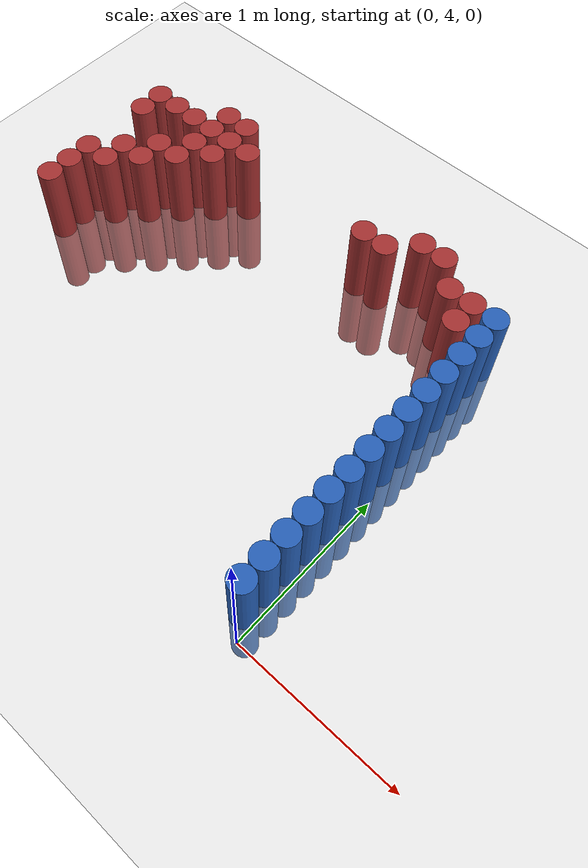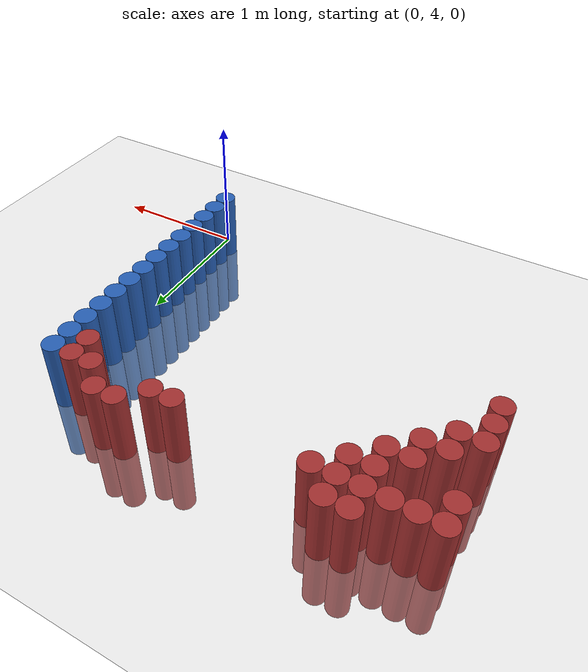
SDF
<sdf version="1.6">
 <world name="default">
  <model name="ground_plane">
   <static>1</static>
   <link name="link">
    <collision name="collision">
     <geometry><plane><normal>0 0 1</normal><size>100 100</size></plane></geometry>
     <surface><friction><ode><mu>100</mu><mu2>50</mu2></ode></friction></surface>
    </collision>
    <visual name="visual">
     <cast_shadows>0</cast_shadows>
     <geometry><plane><normal>0 0 1</normal><size>100 100</size></plane></geometry>
     <material>
      <script><uri>file://media/materials/scripts/gazebo.material</uri><name>Gazebo/Grey</name></script>
     </material>
    </visual>
   </link>
  </model>
  <model name="unit_cylinder_82">
   <static>1</static>
   <pose>-0.075000 4.125000 0.000000 0.000000 0.000000 0.000000</pose>
   <link name="link">
    <inertial>
     <mass>1</mass>
     <inertia><ixx>0.145833</ixx><ixy>0</ixy><ixz>0</ixz><iyy>0.145833</iyy><iyz>0</iyz><izz>0.125</izz></inertia>
    </inertial>
    <collision name="collision">
     <geometry><cylinder><radius>0.075000</radius><length>1</length></cylinder></geometry>
    </collision>
    <visual name="visual">
     <geometry><cylinder><radius>0.075000</radius><length>1</length></cylinder></geometry>
     <material>
      <ambient>0.152000 0.379000 0.720000 1</ambient>
      <diffuse>0.152000 0.379000 0.720000 1</diffuse>
     </material>
     <material>
      <script><name>Gazebo/Grey</name><uri>file://media/materials/scripts/gazebo.material</uri></script>
     </material>
    </visual>
    <sensor name="sensor_contact" type="contact"><contact><collision>collision</collision></contact></sensor>
   </link>
   <plugin filename="gz-sim-touchplugin-system" name="gz::sim::systems::TouchPlugin">
    <target>robot</target>
    <namespace>robot</namespace>
    <time>0.001</time>
    <enabled>true</enabled>
   </plugin>
  </model>
  <model name="unit_cylinder_84">
   <static>1</static>
   <pose>-0.075000 4.275000 0.000000 0.000000 0.000000 0.000000</pose>
   <link name="link">
    <inertial>
     <mass>1</mass>
     <inertia><ixx>0.145833</ixx><ixy>0</ixy><ixz>0</ixz><iyy>0.145833</iyy><iyz>0</iyz><izz>0.125</izz></inertia>
    </inertial>
    <collision name="collision">
     <geometry><cylinder><radius>0.075000</radius><length>1</length></cylinder></geometry>
    </collision>
    <visual name="visual">
     <geometry><cylinder><radius>0.075000</radius><length>1</length></cylinder></geometry>
     <material>
      <ambient>0.152000 0.379000 0.720000 1</ambient>
      <diffuse>0.152000 0.379000 0.720000 1</diffuse>
     </material>
     <material>
      <script><name>Gazebo/Grey</name><uri>file://media/materials/scripts/gazebo.material</uri></script>
     </material>
    </visual>
    <sensor name="sensor_contact" type="contact"><contact><collision>collision</collision></contact></sensor>
   </link>
   <plugin filename="gz-sim-touchplugin-system" name="gz::sim::systems::TouchPlugin">
    <target>robot</target>
    <namespace>robot</namespace>
    <time>0.001</time>
    <enabled>true</enabled>
   </plugin>
  </model>
  <model name="unit_cylinder_86">
   <static>1</static>
   <pose>-0.075000 4.425000 0.000000 0.000000 0.000000 0.000000</pose>
   <link name="link">
    <inertial>
     <mass>1</mass>
     <inertia><ixx>0.145833</ixx><ixy>0</ixy><ixz>0</ixz><iyy>0.145833</iyy><iyz>0</iyz><izz>0.125</izz></inertia>
    </inertial>
    <collision name="collision">
     <geometry><cylinder><radius>0.075000</radius><length>1</length></cylinder></geometry>
    </collision>
    <visual name="visual">
     <geometry><cylinder><radius>0.075000</radius><length>1</length></cylinder></geometry>
     <material>
      <ambient>0.152000 0.379000 0.720000 1</ambient>
      <diffuse>0.152000 0.379000 0.720000 1</diffuse>
     </material>
     <material>
      <script><name>Gazebo/Grey</name><uri>file://media/materials/scripts/gazebo.material</uri></script>
     </material>
    </visual>
    <sensor name="sensor_contact" type="contact"><contact><collision>collision</collision></contact></sensor>
   </link>
   <plugin filename="gz-sim-touchplugin-system" name="gz::sim::systems::TouchPlugin">
    <target>robot</target>
    <namespace>robot</namespace>
    <time>0.001</time>
    <enabled>true</enabled>
   </plugin>
  </model>
  <model name="unit_cylinder_88">
   <static>1</static>
   <pose>-0.075000 4.575000 0.000000 0.000000 0.000000 0.000000</pose>
   <link name="link">
    <inertial>
     <mass>1</mass>
     <inertia><ixx>0.145833</ixx><ixy>0</ixy><ixz>0</ixz><iyy>0.145833</iyy><iyz>0</iyz><izz>0.125</izz></inertia>
    </inertial>
    <collision name="collision">
     <geometry><cylinder><radius>0.075000</radius><length>1</length></cylinder></geometry>
    </collision>
    <visual name="visual">
     <geometry><cylinder><radius>0.075000</radius><length>1</length></cylinder></geometry>
     <material>
      <ambient>0.152000 0.379000 0.720000 1</ambient>
      <diffuse>0.152000 0.379000 0.720000 1</diffuse>
     </material>
     <material>
      <script><name>Gazebo/Grey</name><uri>file://media/materials/scripts/gazebo.material</uri></script>
     </material>
    </visual>
    <sensor name="sensor_contact" type="contact"><contact><collision>collision</collision></contact></sensor>
   </link>
   <plugin filename="gz-sim-touchplugin-system" name="gz::sim::systems::TouchPlugin">
    <target>robot</target>
    <namespace>robot</namespace>
    <time>0.001</time>
    <enabled>true</enabled>
   </plugin>
  </model>
  <model name="unit_cylinder_90">
   <static>1</static>
   <pose>-0.075000 4.725000 0.000000 0.000000 0.000000 0.000000</pose>
   <link name="link">
    <inertial>
     <mass>1</mass>
     <inertia><ixx>0.145833</ixx><ixy>0</ixy><ixz>0</ixz><iyy>0.145833</iyy><iyz>0</iyz><izz>0.125</izz></inertia>
    </inertial>
    <collision name="collision">
     <geometry><cylinder><radius>0.075000</radius><length>1</length></cylinder></geometry>
    </collision>
    <visual name="visual">
     <geometry><cylinder><radius>0.075000</radius><length>1</length></cylinder></geometry>
     <material>
      <ambient>0.152000 0.379000 0.720000 1</ambient>
      <diffuse>0.152000 0.379000 0.720000 1</diffuse>
     </material>
     <material>
      <script><name>Gazebo/Grey</name><uri>file://media/materials/scripts/gazebo.material</uri></script>
     </material>
    </visual>
    <sensor name="sensor_contact" type="contact"><contact><collision>collision</collision></contact></sensor>
   </link>
   <plugin filename="gz-sim-touchplugin-system" name="gz::sim::systems::TouchPlugin">
    <target>robot</target>
    <namespace>robot</namespace>
    <time>0.001</time>
    <enabled>true</enabled>
   </plugin>
  </model>
  <model name="unit_cylinder_92">
   <static>1</static>
   <pose>-0.075000 4.875000 0.000000 0.000000 0.000000 0.000000</pose>
   <link name="link">
    <inertial>
     <mass>1</mass>
     <inertia><ixx>0.145833</ixx><ixy>0</ixy><ixz>0</ixz><iyy>0.145833</iyy><iyz>0</iyz><izz>0.125</izz></inertia>
    </inertial>
    <collision name="collision">
     <geometry><cylinder><radius>0.075000</radius><length>1</length></cylinder></geometry>
    </collision>
    <visual name="visual">
     <geometry><cylinder><radius>0.075000</radius><length>1</length></cylinder></geometry>
     <material>
      <ambient>0.152000 0.379000 0.720000 1</ambient>
      <diffuse>0.152000 0.379000 0.720000 1</diffuse>
     </material>
     <material>
      <script><name>Gazebo/Grey</name><uri>file://media/materials/scripts/gazebo.material</uri></script>
     </material>
    </visual>
    <sensor name="sensor_contact" type="contact"><contact><collision>collision</collision></contact></sensor>
   </link>
   <plugin filename="gz-sim-touchplugin-system" name="gz::sim::systems::TouchPlugin">
    <target>robot</target>
    <namespace>robot</namespace>
    <time>0.001</time>
    <enabled>true</enabled>
   </plugin>
  </model>
  <model name="unit_cylinder_94">
   <static>1</static>
   <pose>-0.075000 5.025000 0.000000 0.000000 0.000000 0.000000</pose>
   <link name="link">
    <inertial>
     <mass>1</mass>
     <inertia><ixx>0.145833</ixx><ixy>0</ixy><ixz>0</ixz><iyy>0.145833</iyy><iyz>0</iyz><izz>0.125</izz></inertia>
    </inertial>
    <collision name="collision">
     <geometry><cylinder><radius>0.075000</radius><length>1</length></cylinder></geometry>
    </collision>
    <visual name="visual">
     <geometry><cylinder><radius>0.075000</radius><length>1</length></cylinder></geometry>
     <material>
      <ambient>0.152000 0.379000 0.720000 1</ambient>
      <diffuse>0.152000 0.379000 0.720000 1</diffuse>
     </material>
     <material>
      <script><name>Gazebo/Grey</name><uri>file://media/materials/scripts/gazebo.material</uri></script>
     </material>
    </visual>
    <sensor name="sensor_contact" type="contact"><contact><collision>collision</collision></contact></sensor>
   </link>
   <plugin filename="gz-sim-touchplugin-system" name="gz::sim::systems::TouchPlugin">
    <target>robot</target>
    <namespace>robot</namespace>
    <time>0.001</time>
    <enabled>true</enabled>
   </plugin>
  </model>
  <model name="unit_cylinder_230">
   <static>1</static>
   <pose>-2.625000 5.175000 0.000000 0.000000 0.000000 0.000000</pose>
   <link name="link">
    <inertial>
     <mass>1</mass>
     <inertia><ixx>0.145833</ixx><ixy>0</ixy><ixz>0</ixz><iyy>0.145833</iyy><iyz>0</iyz><izz>0.125</izz></inertia>
    </inertial>
    <collision name="collision">
     <geometry><cylinder><radius>0.075000</radius><length>1</length></cylinder></geometry>
    </collision>
    <visual name="visual">
     <geometry><cylinder><radius>0.075000</radius><length>1</length></cylinder></geometry>
     <material>
      <ambient>0.648000 0.192000 0.192000 1</ambient>
      <diffuse>0.648000 0.192000 0.192000 1</diffuse>
     </material>
     <material>
      <script><name>Gazebo/Grey</name><uri>file://media/materials/scripts/gazebo.material</uri></script>
     </material>
    </visual>
    <sensor name="sensor_contact" type="contact"><contact><collision>collision</collision></contact></sensor>
   </link>
   <plugin filename="gz-sim-touchplugin-system" name="gz::sim::systems::TouchPlugin">
    <target>robot</target>
    <namespace>robot</namespace>
    <time>0.001</time>
    <enabled>true</enabled>
   </plugin>
  </model>
  <model name="unit_cylinder_231">
   <static>1</static>
   <pose>-2.625000 5.325000 0.000000 0.000000 0.000000 0.000000</pose>
   <link name="link">
    <inertial>
     <mass>1</mass>
     <inertia><ixx>0.145833</ixx><ixy>0</ixy><ixz>0</ixz><iyy>0.145833</iyy><iyz>0</iyz><izz>0.125</izz></inertia>
    </inertial>
    <collision name="collision">
     <geometry><cylinder><radius>0.075000</radius><length>1</length></cylinder></geometry>
    </collision>
    <visual name="visual">
     <geometry><cylinder><radius>0.075000</radius><length>1</length></cylinder></geometry>
     <material>
      <ambient>0.648000 0.192000 0.192000 1</ambient>
      <diffuse>0.648000 0.192000 0.192000 1</diffuse>
     </material>
     <material>
      <script><name>Gazebo/Grey</name><uri>file://media/materials/scripts/gazebo.material</uri></script>
     </material>
    </visual>
    <sensor name="sensor_contact" type="contact"><contact><collision>collision</collision></contact></sensor>
   </link>
   <plugin filename="gz-sim-touchplugin-system" name="gz::sim::systems::TouchPlugin">
    <target>robot</target>
    <namespace>robot</namespace>
    <time>0.001</time>
    <enabled>true</enabled>
   </plugin>
  </model>
  <model name="unit_cylinder_232">
   <static>1</static>
   <pose>-2.625000 5.475000 0.000000 0.000000 0.000000 0.000000</pose>
   <link name="link">
    <inertial>
     <mass>1</mass>
     <inertia><ixx>0.145833</ixx><ixy>0</ixy><ixz>0</ixz><iyy>0.145833</iyy><iyz>0</iyz><izz>0.125</izz></inertia>
    </inertial>
    <collision name="collision">
     <geometry><cylinder><radius>0.075000</radius><length>1</length></cylinder></geometry>
    </collision>
    <visual name="visual">
     <geometry><cylinder><radius>0.075000</radius><length>1</length></cylinder></geometry>
     <material>
      <ambient>0.648000 0.192000 0.192000 1</ambient>
      <diffuse>0.648000 0.192000 0.192000 1</diffuse>
     </material>
     <material>
      <script><name>Gazebo/Grey</name><uri>file://media/materials/scripts/gazebo.material</uri></script>
     </material>
    </visual>
    <sensor name="sensor_contact" type="contact"><contact><collision>collision</collision></contact></sensor>
   </link>
   <plugin filename="gz-sim-touchplugin-system" name="gz::sim::systems::TouchPlugin">
    <target>robot</target>
    <namespace>robot</namespace>
    <time>0.001</time>
    <enabled>true</enabled>
   </plugin>
  </model>
  <model name="unit_cylinder_233">
   <static>1</static>
   <pose>-2.625000 5.925000 0.000000 0.000000 0.000000 0.000000</pose>
   <link name="link">
    <inertial>
     <mass>1</mass>
     <inertia><ixx>0.145833</ixx><ixy>0</ixy><ixz>0</ixz><iyy>0.145833</iyy><iyz>0</iyz><izz>0.125</izz></inertia>
    </inertial>
    <collision name="collision">
     <geometry><cylinder><radius>0.075000</radius><length>1</length></cylinder></geometry>
    </collision>
    <visual name="visual">
     <geometry><cylinder><radius>0.075000</radius><length>1</length></cylinder></geometry>
     <material>
      <ambient>0.648000 0.192000 0.192000 1</ambient>
      <diffuse>0.648000 0.192000 0.192000 1</diffuse>
     </material>
     <material>
      <script><name>Gazebo/Grey</name><uri>file://media/materials/scripts/gazebo.material</uri></script>
     </material>
    </visual>
    <sensor name="sensor_contact" type="contact"><contact><collision>collision</collision></contact></sensor>
   </link>
   <plugin filename="gz-sim-touchplugin-system" name="gz::sim::systems::TouchPlugin">
    <target>robot</target>
    <namespace>robot</namespace>
    <time>0.001</time>
    <enabled>true</enabled>
   </plugin>
  </model>
  <model name="unit_cylinder_234">
   <static>1</static>
   <pose>-2.625000 6.075000 0.000000 0.000000 0.000000 0.000000</pose>
   <link name="link">
    <inertial>
     <mass>1</mass>
     <inertia><ixx>0.145833</ixx><ixy>0</ixy><ixz>0</ixz><iyy>0.145833</iyy><iyz>0</iyz><izz>0.125</izz></inertia>
    </inertial>
    <collision name="collision">
     <geometry><cylinder><radius>0.075000</radius><length>1</length></cylinder></geometry>
    </collision>
    <visual name="visual">
     <geometry><cylinder><radius>0.075000</radius><length>1</length></cylinder></geometry>
     <material>
      <ambient>0.648000 0.192000 0.192000 1</ambient>
      <diffuse>0.648000 0.192000 0.192000 1</diffuse>
     </material>
     <material>
      <script><name>Gazebo/Grey</name><uri>file://media/materials/scripts/gazebo.material</uri></script>
     </material>
    </visual>
    <sensor name="sensor_contact" type="contact"><contact><collision>collision</collision></contact></sensor>
   </link>
   <plugin filename="gz-sim-touchplugin-system" name="gz::sim::systems::TouchPlugin">
    <target>robot</target>
    <namespace>robot</namespace>
    <time>0.001</time>
    <enabled>true</enabled>
   </plugin>
  </model>
  <model name="unit_cylinder_242">
   <static>1</static>
   <pose>-2.475000 5.475000 0.000000 0.000000 0.000000 0.000000</pose>
   <link name="link">
    <inertial>
     <mass>1</mass>
     <inertia><ixx>0.145833</ixx><ixy>0</ixy><ixz>0</ixz><iyy>0.145833</iyy><iyz>0</iyz><izz>0.125</izz></inertia>
    </inertial>
    <collision name="collision">
     <geometry><cylinder><radius>0.075000</radius><length>1</length></cylinder></geometry>
    </collision>
    <visual name="visual">
     <geometry><cylinder><radius>0.075000</radius><length>1</length></cylinder></geometry>
     <material>
      <ambient>0.648000 0.192000 0.192000 1</ambient>
      <diffuse>0.648000 0.192000 0.192000 1</diffuse>
     </material>
     <material>
      <script><name>Gazebo/Grey</name><uri>file://media/materials/scripts/gazebo.material</uri></script>
     </material>
    </visual>
    <sensor name="sensor_contact" type="contact"><contact><collision>collision</collision></contact></sensor>
   </link>
   <plugin filename="gz-sim-touchplugin-system" name="gz::sim::systems::TouchPlugin">
    <target>robot</target>
    <namespace>robot</namespace>
    <time>0.001</time>
    <enabled>true</enabled>
   </plugin>
  </model>
  <model name="unit_cylinder_243">
   <static>1</static>
   <pose>-2.475000 5.625000 0.000000 0.000000 0.000000 0.000000</pose>
   <link name="link">
    <inertial>
     <mass>1</mass>
     <inertia><ixx>0.145833</ixx><ixy>0</ixy><ixz>0</ixz><iyy>0.145833</iyy><iyz>0</iyz><izz>0.125</izz></inertia>
    </inertial>
    <collision name="collision">
     <geometry><cylinder><radius>0.075000</radius><length>1</length></cylinder></geometry>
    </collision>
    <visual name="visual">
     <geometry><cylinder><radius>0.075000</radius><length>1</length></cylinder></geometry>
     <material>
      <ambient>0.648000 0.192000 0.192000 1</ambient>
      <diffuse>0.648000 0.192000 0.192000 1</diffuse>
     </material>
     <material>
      <script><name>Gazebo/Grey</name><uri>file://media/materials/scripts/gazebo.material</uri></script>
     </material>
    </visual>
    <sensor name="sensor_contact" type="contact"><contact><collision>collision</collision></contact></sensor>
   </link>
   <plugin filename="gz-sim-touchplugin-system" name="gz::sim::systems::TouchPlugin">
    <target>robot</target>
    <namespace>robot</namespace>
    <time>0.001</time>
    <enabled>true</enabled>
   </plugin>
  </model>
  <model name="unit_cylinder_244">
   <static>1</static>
   <pose>-2.475000 6.075000 0.000000 0.000000 0.000000 0.000000</pose>
   <link name="link">
    <inertial>
     <mass>1</mass>
     <inertia><ixx>0.145833</ixx><ixy>0</ixy><ixz>0</ixz><iyy>0.145833</iyy><iyz>0</iyz><izz>0.125</izz></inertia>
    </inertial>
    <collision name="collision">
     <geometry><cylinder><radius>0.075000</radius><length>1</length></cylinder></geometry>
    </collision>
    <visual name="visual">
     <geometry><cylinder><radius>0.075000</radius><length>1</length></cylinder></geometry>
     <material>
      <ambient>0.648000 0.192000 0.192000 1</ambient>
      <diffuse>0.648000 0.192000 0.192000 1</diffuse>
     </material>
     <material>
      <script><name>Gazebo/Grey</name><uri>file://media/materials/scripts/gazebo.material</uri></script>
     </material>
    </visual>
    <sensor name="sensor_contact" type="contact"><contact><collision>collision</collision></contact></sensor>
   </link>
   <plugin filename="gz-sim-touchplugin-system" name="gz::sim::systems::TouchPlugin">
    <target>robot</target>
    <namespace>robot</namespace>
    <time>0.001</time>
    <enabled>true</enabled>
   </plugin>
  </model>
  <model name="unit_cylinder_250">
   <static>1</static>
   <pose>-2.325000 5.625000 0.000000 0.000000 0.000000 0.000000</pose>
   <link name="link">
    <inertial>
     <mass>1</mass>
     <inertia><ixx>0.145833</ixx><ixy>0</ixy><ixz>0</ixz><iyy>0.145833</iyy><iyz>0</iyz><izz>0.125</izz></inertia>
    </inertial>
    <collision name="collision">
     <geometry><cylinder><radius>0.075000</radius><length>1</length></cylinder></geometry>
    </collision>
    <visual name="visual">
     <geometry><cylinder><radius>0.075000</radius><length>1</length></cylinder></geometry>
     <material>
      <ambient>0.648000 0.192000 0.192000 1</ambient>
      <diffuse>0.648000 0.192000 0.192000 1</diffuse>
     </material>
     <material>
      <script><name>Gazebo/Grey</name><uri>file://media/materials/scripts/gazebo.material</uri></script>
     </material>
    </visual>
    <sensor name="sensor_contact" type="contact"><contact><collision>collision</collision></contact></sensor>
   </link>
   <plugin filename="gz-sim-touchplugin-system" name="gz::sim::systems::TouchPlugin">
    <target>robot</target>
    <namespace>robot</namespace>
    <time>0.001</time>
    <enabled>true</enabled>
   </plugin>
  </model>
  <model name="unit_cylinder_251">
   <static>1</static>
   <pose>-2.325000 5.775000 0.000000 0.000000 0.000000 0.000000</pose>
   <link name="link">
    <inertial>
     <mass>1</mass>
     <inertia><ixx>0.145833</ixx><ixy>0</ixy><ixz>0</ixz><iyy>0.145833</iyy><iyz>0</iyz><izz>0.125</izz></inertia>
    </inertial>
    <collision name="collision">
     <geometry><cylinder><radius>0.075000</radius><length>1</length></cylinder></geometry>
    </collision>
    <visual name="visual">
     <geometry><cylinder><radius>0.075000</radius><length>1</length></cylinder></geometry>
     <material>
      <ambient>0.648000 0.192000 0.192000 1</ambient>
      <diffuse>0.648000 0.192000 0.192000 1</diffuse>
     </material>
     <material>
      <script><name>Gazebo/Grey</name><uri>file://media/materials/scripts/gazebo.material</uri></script>
     </material>
    </visual>
    <sensor name="sensor_contact" type="contact"><contact><collision>collision</collision></contact></sensor>
   </link>
   <plugin filename="gz-sim-touchplugin-system" name="gz::sim::systems::TouchPlugin">
    <target>robot</target>
    <namespace>robot</namespace>
    <time>0.001</time>
    <enabled>true</enabled>
   </plugin>
  </model>
  <model name="unit_cylinder_252">
   <static>1</static>
   <pose>-2.325000 6.075000 0.000000 0.000000 0.000000 0.000000</pose>
   <link name="link">
    <inertial>
     <mass>1</mass>
     <inertia><ixx>0.145833</ixx><ixy>0</ixy><ixz>0</ixz><iyy>0.145833</iyy><iyz>0</iyz><izz>0.125</izz></inertia>
    </inertial>
    <collision name="collision">
     <geometry><cylinder><radius>0.075000</radius><length>1</length></cylinder></geometry>
    </collision>
    <visual name="visual">
     <geometry><cylinder><radius>0.075000</radius><length>1</length></cylinder></geometry>
     <material>
      <ambient>0.648000 0.192000 0.192000 1</ambient>
      <diffuse>0.648000 0.192000 0.192000 1</diffuse>
     </material>
     <material>
      <script><name>Gazebo/Grey</name><uri>file://media/materials/scripts/gazebo.material</uri></script>
     </material>
    </visual>
    <sensor name="sensor_contact" type="contact"><contact><collision>collision</collision></contact></sensor>
   </link>
   <plugin filename="gz-sim-touchplugin-system" name="gz::sim::systems::TouchPlugin">
    <target>robot</target>
    <namespace>robot</namespace>
    <time>0.001</time>
    <enabled>true</enabled>
   </plugin>
  </model>
  <model name="unit_cylinder_260">
   <static>1</static>
   <pose>-2.175000 5.775000 0.000000 0.000000 0.000000 0.000000</pose>
   <link name="link">
    <inertial>
     <mass>1</mass>
     <inertia><ixx>0.145833</ixx><ixy>0</ixy><ixz>0</ixz><iyy>0.145833</iyy><iyz>0</iyz><izz>0.125</izz></inertia>
    </inertial>
    <collision name="collision">
     <geometry><cylinder><radius>0.075000</radius><length>1</length></cylinder></geometry>
    </collision>
    <visual name="visual">
     <geometry><cylinder><radius>0.075000</radius><length>1</length></cylinder></geometry>
     <material>
      <ambient>0.648000 0.192000 0.192000 1</ambient>
      <diffuse>0.648000 0.192000 0.192000 1</diffuse>
     </material>
     <material>
      <script><name>Gazebo/Grey</name><uri>file://media/materials/scripts/gazebo.material</uri></script>
     </material>
    </visual>
    <sensor name="sensor_contact" type="contact"><contact><collision>collision</collision></contact></sensor>
   </link>
   <plugin filename="gz-sim-touchplugin-system" name="gz::sim::systems::TouchPlugin">
    <target>robot</target>
    <namespace>robot</namespace>
    <time>0.001</time>
    <enabled>true</enabled>
   </plugin>
  </model>
  <model name="unit_cylinder_261">
   <static>1</static>
   <pose>-2.175000 5.925000 0.000000 0.000000 0.000000 0.000000</pose>
   <link name="link">
    <inertial>
     <mass>1</mass>
     <inertia><ixx>0.145833</ixx><ixy>0</ixy><ixz>0</ixz><iyy>0.145833</iyy><iyz>0</iyz><izz>0.125</izz></inertia>
    </inertial>
    <collision name="collision">
     <geometry><cylinder><radius>0.075000</radius><length>1</length></cylinder></geometry>
    </collision>
    <visual name="visual">
     <geometry><cylinder><radius>0.075000</radius><length>1</length></cylinder></geometry>
     <material>
      <ambient>0.648000 0.192000 0.192000 1</ambient>
      <diffuse>0.648000 0.192000 0.192000 1</diffuse>
     </material>
     <material>
      <script><name>Gazebo/Grey</name><uri>file://media/materials/scripts/gazebo.material</uri></script>
     </material>
    </visual>
    <sensor name="sensor_contact" type="contact"><contact><collision>collision</collision></contact></sensor>
   </link>
   <plugin filename="gz-sim-touchplugin-system" name="gz::sim::systems::TouchPlugin">
    <target>robot</target>
    <namespace>robot</namespace>
    <time>0.001</time>
    <enabled>true</enabled>
   </plugin>
  </model>
  <model name="unit_cylinder_262">
   <static>1</static>
   <pose>-2.175000 6.075000 0.000000 0.000000 0.000000 0.000000</pose>
   <link name="link">
    <inertial>
     <mass>1</mass>
     <inertia><ixx>0.145833</ixx><ixy>0</ixy><ixz>0</ixz><iyy>0.145833</iyy><iyz>0</iyz><izz>0.125</izz></inertia>
    </inertial>
    <collision name="collision">
     <geometry><cylinder><radius>0.075000</radius><length>1</length></cylinder></geometry>
    </collision>
    <visual name="visual">
     <geometry><cylinder><radius>0.075000</radius><length>1</length></cylinder></geometry>
     <material>
      <ambient>0.648000 0.192000 0.192000 1</ambient>
      <diffuse>0.648000 0.192000 0.192000 1</diffuse>
     </material>
     <material>
      <script><name>Gazebo/Grey</name><uri>file://media/materials/scripts/gazebo.material</uri></script>
     </material>
    </visual>
    <sensor name="sensor_contact" type="contact"><contact><collision>collision</collision></contact></sensor>
   </link>
   <plugin filename="gz-sim-touchplugin-system" name="gz::sim::systems::TouchPlugin">
    <target>robot</target>
    <namespace>robot</namespace>
    <time>0.001</time>
    <enabled>true</enabled>
   </plugin>
  </model>
  <model name="unit_cylinder_263">
   <static>1</static>
   <pose>-2.175000 6.225000 0.000000 0.000000 0.000000 0.000000</pose>
   <link name="link">
    <inertial>
     <mass>1</mass>
     <inertia><ixx>0.145833</ixx><ixy>0</ixy><ixz>0</ixz><iyy>0.145833</iyy><iyz>0</iyz><izz>0.125</izz></inertia>
    </inertial>
    <collision name="collision">
     <geometry><cylinder><radius>0.075000</radius><length>1</length></cylinder></geometry>
    </collision>
    <visual name="visual">
     <geometry><cylinder><radius>0.075000</radius><length>1</length></cylinder></geometry>
     <material>
      <ambient>0.648000 0.192000 0.192000 1</ambient>
      <diffuse>0.648000 0.192000 0.192000 1</diffuse>
     </material>
     <material>
      <script><name>Gazebo/Grey</name><uri>file://media/materials/scripts/gazebo.material</uri></script>
     </material>
    </visual>
    <sensor name="sensor_contact" type="contact"><contact><collision>collision</collision></contact></sensor>
   </link>
   <plugin filename="gz-sim-touchplugin-system" name="gz::sim::systems::TouchPlugin">
    <target>robot</target>
    <namespace>robot</namespace>
    <time>0.001</time>
    <enabled>true</enabled>
   </plugin>
  </model>
  <model name="unit_cylinder_268">
   <static>1</static>
   <pose>-2.025000 5.925000 0.000000 0.000000 0.000000 0.000000</pose>
   <link name="link">
    <inertial>
     <mass>1</mass>
     <inertia><ixx>0.145833</ixx><ixy>0</ixy><ixz>0</ixz><iyy>0.145833</iyy><iyz>0</iyz><izz>0.125</izz></inertia>
    </inertial>
    <collision name="collision">
     <geometry><cylinder><radius>0.075000</radius><length>1</length></cylinder></geometry>
    </collision>
    <visual name="visual">
     <geometry><cylinder><radius>0.075000</radius><length>1</length></cylinder></geometry>
     <material>
      <ambient>0.648000 0.192000 0.192000 1</ambient>
      <diffuse>0.648000 0.192000 0.192000 1</diffuse>
     </material>
     <material>
      <script><name>Gazebo/Grey</name><uri>file://media/materials/scripts/gazebo.material</uri></script>
     </material>
    </visual>
    <sensor name="sensor_contact" type="contact"><contact><collision>collision</collision></contact></sensor>
   </link>
   <plugin filename="gz-sim-touchplugin-system" name="gz::sim::systems::TouchPlugin">
    <target>robot</target>
    <namespace>robot</namespace>
    <time>0.001</time>
    <enabled>true</enabled>
   </plugin>
  </model>
  <model name="unit_cylinder_269">
   <static>1</static>
   <pose>-2.025000 6.075000 0.000000 0.000000 0.000000 0.000000</pose>
   <link name="link">
    <inertial>
     <mass>1</mass>
     <inertia><ixx>0.145833</ixx><ixy>0</ixy><ixz>0</ixz><iyy>0.145833</iyy><iyz>0</iyz><izz>0.125</izz></inertia>
    </inertial>
    <collision name="collision">
     <geometry><cylinder><radius>0.075000</radius><length>1</length></cylinder></geometry>
    </collision>
    <visual name="visual">
     <geometry><cylinder><radius>0.075000</radius><length>1</length></cylinder></geometry>
     <material>
      <ambient>0.648000 0.192000 0.192000 1</ambient>
      <diffuse>0.648000 0.192000 0.192000 1</diffuse>
     </material>
     <material>
      <script><name>Gazebo/Grey</name><uri>file://media/materials/scripts/gazebo.material</uri></script>
     </material>
    </visual>
    <sensor name="sensor_contact" type="contact"><contact><collision>collision</collision></contact></sensor>
   </link>
   <plugin filename="gz-sim-touchplugin-system" name="gz::sim::systems::TouchPlugin">
    <target>robot</target>
    <namespace>robot</namespace>
    <time>0.001</time>
    <enabled>true</enabled>
   </plugin>
  </model>
  <model name="unit_cylinder_270">
   <static>1</static>
   <pose>-2.025000 6.225000 0.000000 0.000000 0.000000 0.000000</pose>
   <link name="link">
    <inertial>
     <mass>1</mass>
     <inertia><ixx>0.145833</ixx><ixy>0</ixy><ixz>0</ixz><iyy>0.145833</iyy><iyz>0</iyz><izz>0.125</izz></inertia>
    </inertial>
    <collision name="collision">
     <geometry><cylinder><radius>0.075000</radius><length>1</length></cylinder></geometry>
    </collision>
    <visual name="visual">
     <geometry><cylinder><radius>0.075000</radius><length>1</length></cylinder></geometry>
     <material>
      <ambient>0.648000 0.192000 0.192000 1</ambient>
      <diffuse>0.648000 0.192000 0.192000 1</diffuse>
     </material>
     <material>
      <script><name>Gazebo/Grey</name><uri>file://media/materials/scripts/gazebo.material</uri></script>
     </material>
    </visual>
    <sensor name="sensor_contact" type="contact"><contact><collision>collision</collision></contact></sensor>
   </link>
   <plugin filename="gz-sim-touchplugin-system" name="gz::sim::systems::TouchPlugin">
    <target>robot</target>
    <namespace>robot</namespace>
    <time>0.001</time>
    <enabled>true</enabled>
   </plugin>
  </model>
  <model name="unit_cylinder_274">
   <static>1</static>
   <pose>-1.875000 6.075000 0.000000 0.000000 0.000000 0.000000</pose>
   <link name="link">
    <inertial>
     <mass>1</mass>
     <inertia><ixx>0.145833</ixx><ixy>0</ixy><ixz>0</ixz><iyy>0.145833</iyy><iyz>0</iyz><izz>0.125</izz></inertia>
    </inertial>
    <collision name="collision">
     <geometry><cylinder><radius>0.075000</radius><length>1</length></cylinder></geometry>
    </collision>
    <visual name="visual">
     <geometry><cylinder><radius>0.075000</radius><length>1</length></cylinder></geometry>
     <material>
      <ambient>0.648000 0.192000 0.192000 1</ambient>
      <diffuse>0.648000 0.192000 0.192000 1</diffuse>
     </material>
     <material>
      <script><name>Gazebo/Grey</name><uri>file://media/materials/scripts/gazebo.material</uri></script>
     </material>
    </visual>
    <sensor name="sensor_contact" type="contact"><contact><collision>collision</collision></contact></sensor>
   </link>
   <plugin filename="gz-sim-touchplugin-system" name="gz::sim::systems::TouchPlugin">
    <target>robot</target>
    <namespace>robot</namespace>
    <time>0.001</time>
    <enabled>true</enabled>
   </plugin>
  </model>
  <model name="unit_cylinder_278">
   <static>1</static>
   <pose>-0.975000 6.075000 0.000000 0.000000 0.000000 0.000000</pose>
   <link name="link">
    <inertial>
     <mass>1</mass>
     <inertia><ixx>0.145833</ixx><ixy>0</ixy><ixz>0</ixz><iyy>0.145833</iyy><iyz>0</iyz><izz>0.125</izz></inertia>
    </inertial>
    <collision name="collision">
     <geometry><cylinder><radius>0.075000</radius><length>1</length></cylinder></geometry>
    </collision>
    <visual name="visual">
     <geometry><cylinder><radius>0.075000</radius><length>1</length></cylinder></geometry>
     <material>
      <ambient>0.648000 0.192000 0.192000 1</ambient>
      <diffuse>0.648000 0.192000 0.192000 1</diffuse>
     </material>
     <material>
      <script><name>Gazebo/Grey</name><uri>file://media/materials/scripts/gazebo.material</uri></script>
     </material>
    </visual>
    <sensor name="sensor_contact" type="contact"><contact><collision>collision</collision></contact></sensor>
   </link>
   <plugin filename="gz-sim-touchplugin-system" name="gz::sim::systems::TouchPlugin">
    <target>robot</target>
    <namespace>robot</namespace>
    <time>0.001</time>
    <enabled>true</enabled>
   </plugin>
  </model>
  <model name="unit_cylinder_284">
   <static>1</static>
   <pose>-0.825000 6.075000 0.000000 0.000000 0.000000 0.000000</pose>
   <link name="link">
    <inertial>
     <mass>1</mass>
     <inertia><ixx>0.145833</ixx><ixy>0</ixy><ixz>0</ixz><iyy>0.145833</iyy><iyz>0</iyz><izz>0.125</izz></inertia>
    </inertial>
    <collision name="collision">
     <geometry><cylinder><radius>0.075000</radius><length>1</length></cylinder></geometry>
    </collision>
    <visual name="visual">
     <geometry><cylinder><radius>0.075000</radius><length>1</length></cylinder></geometry>
     <material>
      <ambient>0.648000 0.192000 0.192000 1</ambient>
      <diffuse>0.648000 0.192000 0.192000 1</diffuse>
     </material>
     <material>
      <script><name>Gazebo/Grey</name><uri>file://media/materials/scripts/gazebo.material</uri></script>
     </material>
    </visual>
    <sensor name="sensor_contact" type="contact"><contact><collision>collision</collision></contact></sensor>
   </link>
   <plugin filename="gz-sim-touchplugin-system" name="gz::sim::systems::TouchPlugin">
    <target>robot</target>
    <namespace>robot</namespace>
    <time>0.001</time>
    <enabled>true</enabled>
   </plugin>
  </model>
  <model name="unit_cylinder_294">
   <static>1</static>
   <pose>-0.675000 6.225000 0.000000 0.000000 0.000000 0.000000</pose>
   <link name="link">
    <inertial>
     <mass>1</mass>
     <inertia><ixx>0.145833</ixx><ixy>0</ixy><ixz>0</ixz><iyy>0.145833</iyy><iyz>0</iyz><izz>0.125</izz></inertia>
    </inertial>
    <collision name="collision">
     <geometry><cylinder><radius>0.075000</radius><length>1</length></cylinder></geometry>
    </collision>
    <visual name="visual">
     <geometry><cylinder><radius>0.075000</radius><length>1</length></cylinder></geometry>
     <material>
      <ambient>0.648000 0.192000 0.192000 1</ambient>
      <diffuse>0.648000 0.192000 0.192000 1</diffuse>
     </material>
     <material>
      <script><name>Gazebo/Grey</name><uri>file://media/materials/scripts/gazebo.material</uri></script>
     </material>
    </visual>
    <sensor name="sensor_contact" type="contact"><contact><collision>collision</collision></contact></sensor>
   </link>
   <plugin filename="gz-sim-touchplugin-system" name="gz::sim::systems::TouchPlugin">
    <target>robot</target>
    <namespace>robot</namespace>
    <time>0.001</time>
    <enabled>true</enabled>
   </plugin>
  </model>
  <model name="unit_cylinder_298">
   <static>1</static>
   <pose>-0.525000 6.225000 0.000000 0.000000 0.000000 0.000000</pose>
   <link name="link">
    <inertial>
     <mass>1</mass>
     <inertia><ixx>0.145833</ixx><ixy>0</ixy><ixz>0</ixz><iyy>0.145833</iyy><iyz>0</iyz><izz>0.125</izz></inertia>
    </inertial>
    <collision name="collision">
     <geometry><cylinder><radius>0.075000</radius><length>1</length></cylinder></geometry>
    </collision>
    <visual name="visual">
     <geometry><cylinder><radius>0.075000</radius><length>1</length></cylinder></geometry>
     <material>
      <ambient>0.648000 0.192000 0.192000 1</ambient>
      <diffuse>0.648000 0.192000 0.192000 1</diffuse>
     </material>
     <material>
      <script><name>Gazebo/Grey</name><uri>file://media/materials/scripts/gazebo.material</uri></script>
     </material>
    </visual>
    <sensor name="sensor_contact" type="contact"><contact><collision>collision</collision></contact></sensor>
   </link>
   <plugin filename="gz-sim-touchplugin-system" name="gz::sim::systems::TouchPlugin">
    <target>robot</target>
    <namespace>robot</namespace>
    <time>0.001</time>
    <enabled>true</enabled>
   </plugin>
  </model>
  <model name="unit_cylinder_302">
   <static>1</static>
   <pose>-0.375000 6.075000 0.000000 0.000000 0.000000 0.000000</pose>
   <link name="link">
    <inertial>
     <mass>1</mass>
     <inertia><ixx>0.145833</ixx><ixy>0</ixy><ixz>0</ixz><iyy>0.145833</iyy><iyz>0</iyz><izz>0.125</izz></inertia>
    </inertial>
    <collision name="collision">
     <geometry><cylinder><radius>0.075000</radius><length>1</length></cylinder></geometry>
    </collision>
    <visual name="visual">
     <geometry><cylinder><radius>0.075000</radius><length>1</length></cylinder></geometry>
     <material>
      <ambient>0.648000 0.192000 0.192000 1</ambient>
      <diffuse>0.648000 0.192000 0.192000 1</diffuse>
     </material>
     <material>
      <script><name>Gazebo/Grey</name><uri>file://media/materials/scripts/gazebo.material</uri></script>
     </material>
    </visual>
    <sensor name="sensor_contact" type="contact"><contact><collision>collision</collision></contact></sensor>
   </link>
   <plugin filename="gz-sim-touchplugin-system" name="gz::sim::systems::TouchPlugin">
    <target>robot</target>
    <namespace>robot</namespace>
    <time>0.001</time>
    <enabled>true</enabled>
   </plugin>
  </model>
  <model name="unit_cylinder_316">
   <static>1</static>
   <pose>-0.225000 5.925000 0.000000 0.000000 0.000000 0.000000</pose>
   <link name="link">
    <inertial>
     <mass>1</mass>
     <inertia><ixx>0.145833</ixx><ixy>0</ixy><ixz>0</ixz><iyy>0.145833</iyy><iyz>0</iyz><izz>0.125</izz></inertia>
    </inertial>
    <collision name="collision">
     <geometry><cylinder><radius>0.075000</radius><length>1</length></cylinder></geometry>
    </collision>
    <visual name="visual">
     <geometry><cylinder><radius>0.075000</radius><length>1</length></cylinder></geometry>
     <material>
      <ambient>0.648000 0.192000 0.192000 1</ambient>
      <diffuse>0.648000 0.192000 0.192000 1</diffuse>
     </material>
     <material>
      <script><name>Gazebo/Grey</name><uri>file://media/materials/scripts/gazebo.material</uri></script>
     </material>
    </visual>
    <sensor name="sensor_contact" type="contact"><contact><collision>collision</collision></contact></sensor>
   </link>
   <plugin filename="gz-sim-touchplugin-system" name="gz::sim::systems::TouchPlugin">
    <target>robot</target>
    <namespace>robot</namespace>
    <time>0.001</time>
    <enabled>true</enabled>
   </plugin>
  </model>
  <model name="unit_cylinder_317">
   <static>1</static>
   <pose>-0.225000 6.075000 0.000000 0.000000 0.000000 0.000000</pose>
   <link name="link">
    <inertial>
     <mass>1</mass>
     <inertia><ixx>0.145833</ixx><ixy>0</ixy><ixz>0</ixz><iyy>0.145833</iyy><iyz>0</iyz><izz>0.125</izz></inertia>
    </inertial>
    <collision name="collision">
     <geometry><cylinder><radius>0.075000</radius><length>1</length></cylinder></geometry>
    </collision>
    <visual name="visual">
     <geometry><cylinder><radius>0.075000</radius><length>1</length></cylinder></geometry>
     <material>
      <ambient>0.648000 0.192000 0.192000 1</ambient>
      <diffuse>0.648000 0.192000 0.192000 1</diffuse>
     </material>
     <material>
      <script><name>Gazebo/Grey</name><uri>file://media/materials/scripts/gazebo.material</uri></script>
     </material>
    </visual>
    <sensor name="sensor_contact" type="contact"><contact><collision>collision</collision></contact></sensor>
   </link>
   <plugin filename="gz-sim-touchplugin-system" name="gz::sim::systems::TouchPlugin">
    <target>robot</target>
    <namespace>robot</namespace>
    <time>0.001</time>
    <enabled>true</enabled>
   </plugin>
  </model>
  <model name="unit_cylinder_331">
   <static>1</static>
   <pose>-0.075000 5.175000 0.000000 0.000000 0.000000 0.000000</pose>
   <link name="link">
    <inertial>
     <mass>1</mass>
     <inertia><ixx>0.145833</ixx><ixy>0</ixy><ixz>0</ixz><iyy>0.145833</iyy><iyz>0</iyz><izz>0.125</izz></inertia>
    </inertial>
    <collision name="collision">
     <geometry><cylinder><radius>0.075000</radius><length>1</length></cylinder></geometry>
    </collision>
    <visual name="visual">
     <geometry><cylinder><radius>0.075000</radius><length>1</length></cylinder></geometry>
     <material>
      <ambient>0.152000 0.379000 0.720000 1</ambient>
      <diffuse>0.152000 0.379000 0.720000 1</diffuse>
     </material>
     <material>
      <script><name>Gazebo/Grey</name><uri>file://media/materials/scripts/gazebo.material</uri></script>
     </material>
    </visual>
    <sensor name="sensor_contact" type="contact"><contact><collision>collision</collision></contact></sensor>
   </link>
   <plugin filename="gz-sim-touchplugin-system" name="gz::sim::systems::TouchPlugin">
    <target>robot</target>
    <namespace>robot</namespace>
    <time>0.001</time>
    <enabled>true</enabled>
   </plugin>
  </model>
  <model name="unit_cylinder_332">
   <static>1</static>
   <pose>-0.075000 5.325000 0.000000 0.000000 0.000000 0.000000</pose>
   <link name="link">
    <inertial>
     <mass>1</mass>
     <inertia><ixx>0.145833</ixx><ixy>0</ixy><ixz>0</ixz><iyy>0.145833</iyy><iyz>0</iyz><izz>0.125</izz></inertia>
    </inertial>
    <collision name="collision">
     <geometry><cylinder><radius>0.075000</radius><length>1</length></cylinder></geometry>
    </collision>
    <visual name="visual">
     <geometry><cylinder><radius>0.075000</radius><length>1</length></cylinder></geometry>
     <material>
      <ambient>0.152000 0.379000 0.720000 1</ambient>
      <diffuse>0.152000 0.379000 0.720000 1</diffuse>
     </material>
     <material>
      <script><name>Gazebo/Grey</name><uri>file://media/materials/scripts/gazebo.material</uri></script>
     </material>
    </visual>
    <sensor name="sensor_contact" type="contact"><contact><collision>collision</collision></contact></sensor>
   </link>
   <plugin filename="gz-sim-touchplugin-system" name="gz::sim::systems::TouchPlugin">
    <target>robot</target>
    <namespace>robot</namespace>
    <time>0.001</time>
    <enabled>true</enabled>
   </plugin>
  </model>
  <model name="unit_cylinder_333">
   <static>1</static>
   <pose>-0.075000 5.475000 0.000000 0.000000 0.000000 0.000000</pose>
   <link name="link">
    <inertial>
     <mass>1</mass>
     <inertia><ixx>0.145833</ixx><ixy>0</ixy><ixz>0</ixz><iyy>0.145833</iyy><iyz>0</iyz><izz>0.125</izz></inertia>
    </inertial>
    <collision name="collision">
     <geometry><cylinder><radius>0.075000</radius><length>1</length></cylinder></geometry>
    </collision>
    <visual name="visual">
     <geometry><cylinder><radius>0.075000</radius><length>1</length></cylinder></geometry>
     <material>
      <ambient>0.152000 0.379000 0.720000 1</ambient>
      <diffuse>0.152000 0.379000 0.720000 1</diffuse>
     </material>
     <material>
      <script><name>Gazebo/Grey</name><uri>file://media/materials/scripts/gazebo.material</uri></script>
     </material>
    </visual>
    <sensor name="sensor_contact" type="contact"><contact><collision>collision</collision></contact></sensor>
   </link>
   <plugin filename="gz-sim-touchplugin-system" name="gz::sim::systems::TouchPlugin">
    <target>robot</target>
    <namespace>robot</namespace>
    <time>0.001</time>
    <enabled>true</enabled>
   </plugin>
  </model>
  <model name="unit_cylinder_334">
   <static>1</static>
   <pose>-0.075000 5.625000 0.000000 0.000000 0.000000 0.000000</pose>
   <link name="link">
    <inertial>
     <mass>1</mass>
     <inertia><ixx>0.145833</ixx><ixy>0</ixy><ixz>0</ixz><iyy>0.145833</iyy><iyz>0</iyz><izz>0.125</izz></inertia>
    </inertial>
    <collision name="collision">
     <geometry><cylinder><radius>0.075000</radius><length>1</length></cylinder></geometry>
    </collision>
    <visual name="visual">
     <geometry><cylinder><radius>0.075000</radius><length>1</length></cylinder></geometry>
     <material>
      <ambient>0.152000 0.379000 0.720000 1</ambient>
      <diffuse>0.152000 0.379000 0.720000 1</diffuse>
     </material>
     <material>
      <script><name>Gazebo/Grey</name><uri>file://media/materials/scripts/gazebo.material</uri></script>
     </material>
    </visual>
    <sensor name="sensor_contact" type="contact"><contact><collision>collision</collision></contact></sensor>
   </link>
   <plugin filename="gz-sim-touchplugin-system" name="gz::sim::systems::TouchPlugin">
    <target>robot</target>
    <namespace>robot</namespace>
    <time>0.001</time>
    <enabled>true</enabled>
   </plugin>
  </model>
  <model name="unit_cylinder_335">
   <static>1</static>
   <pose>-0.075000 5.775000 0.000000 0.000000 0.000000 0.000000</pose>
   <link name="link">
    <inertial>
     <mass>1</mass>
     <inertia><ixx>0.145833</ixx><ixy>0</ixy><ixz>0</ixz><iyy>0.145833</iyy><iyz>0</iyz><izz>0.125</izz></inertia>
    </inertial>
    <collision name="collision">
     <geometry><cylinder><radius>0.075000</radius><length>1</length></cylinder></geometry>
    </collision>
    <visual name="visual">
     <geometry><cylinder><radius>0.075000</radius><length>1</length></cylinder></geometry>
     <material>
      <ambient>0.152000 0.379000 0.720000 1</ambient>
      <diffuse>0.152000 0.379000 0.720000 1</diffuse>
     </material>
     <material>
      <script><name>Gazebo/Grey</name><uri>file://media/materials/scripts/gazebo.material</uri></script>
     </material>
    </visual>
    <sensor name="sensor_contact" type="contact"><contact><collision>collision</collision></contact></sensor>
   </link>
   <plugin filename="gz-sim-touchplugin-system" name="gz::sim::systems::TouchPlugin">
    <target>robot</target>
    <namespace>robot</namespace>
    <time>0.001</time>
    <enabled>true</enabled>
   </plugin>
  </model>
  <model name="unit_cylinder_336">
   <static>1</static>
   <pose>-0.075000 5.925000 0.000000 0.000000 0.000000 0.000000</pose>
   <link name="link">
    <inertial>
     <mass>1</mass>
     <inertia><ixx>0.145833</ixx><ixy>0</ixy><ixz>0</ixz><iyy>0.145833</iyy><iyz>0</iyz><izz>0.125</izz></inertia>
    </inertial>
    <collision name="collision">
     <geometry><cylinder><radius>0.075000</radius><length>1</length></cylinder></geometry>
    </collision>
    <visual name="visual">
     <geometry><cylinder><radius>0.075000</radius><length>1</length></cylinder></geometry>
     <material>
      <ambient>0.152000 0.379000 0.720000 1</ambient>
      <diffuse>0.152000 0.379000 0.720000 1</diffuse>
     </material>
     <material>
      <script><name>Gazebo/Grey</name><uri>file://media/materials/scripts/gazebo.material</uri></script>
     </material>
    </visual>
    <sensor name="sensor_contact" type="contact"><contact><collision>collision</collision></contact></sensor>
   </link>
   <plugin filename="gz-sim-touchplugin-system" name="gz::sim::systems::TouchPlugin">
    <target>robot</target>
    <namespace>robot</namespace>
    <time>0.001</time>
    <enabled>true</enabled>
   </plugin>
  </model>
  <model name="unit_cylinder_337">
   <static>1</static>
   <pose>-0.075000 6.075000 0.000000 0.000000 0.000000 0.000000</pose>
   <link name="link">
    <inertial>
     <mass>1</mass>
     <inertia><ixx>0.145833</ixx><ixy>0</ixy><ixz>0</ixz><iyy>0.145833</iyy><iyz>0</iyz><izz>0.125</izz></inertia>
    </inertial>
    <collision name="collision">
     <geometry><cylinder><radius>0.075000</radius><length>1</length></cylinder></geometry>
    </collision>
    <visual name="visual">
     <geometry><cylinder><radius>0.075000</radius><length>1</length></cylinder></geometry>
     <material>
      <ambient>0.152000 0.379000 0.720000 1</ambient>
      <diffuse>0.152000 0.379000 0.720000 1</diffuse>
     </material>
     <material>
      <script><name>Gazebo/Grey</name><uri>file://media/materials/scripts/gazebo.material</uri></script>
     </material>
    </visual>
    <sensor name="sensor_contact" type="contact"><contact><collision>collision</collision></contact></sensor>
   </link>
   <plugin filename="gz-sim-touchplugin-system" name="gz::sim::systems::TouchPlugin">
    <target>robot</target>
    <namespace>robot</namespace>
    <time>0.001</time>
    <enabled>true</enabled>
   </plugin>
  </model>
 </world>
</sdf>
